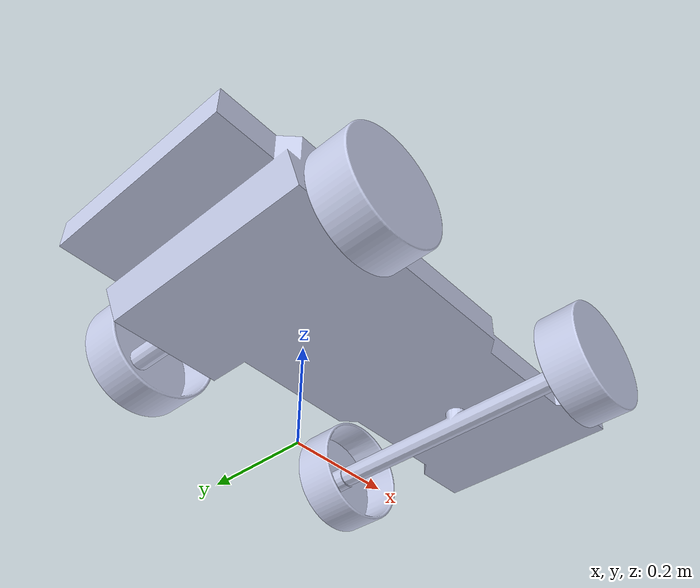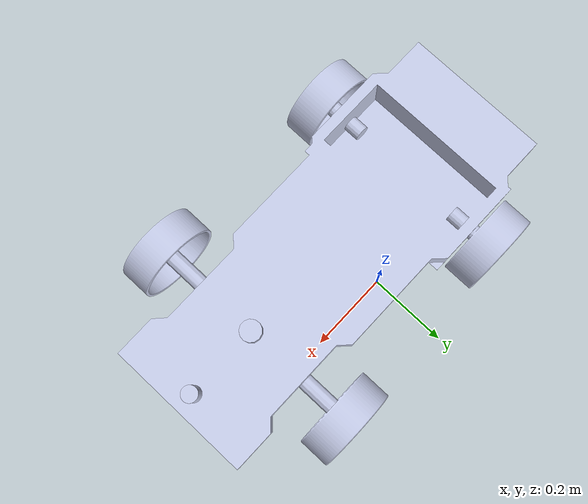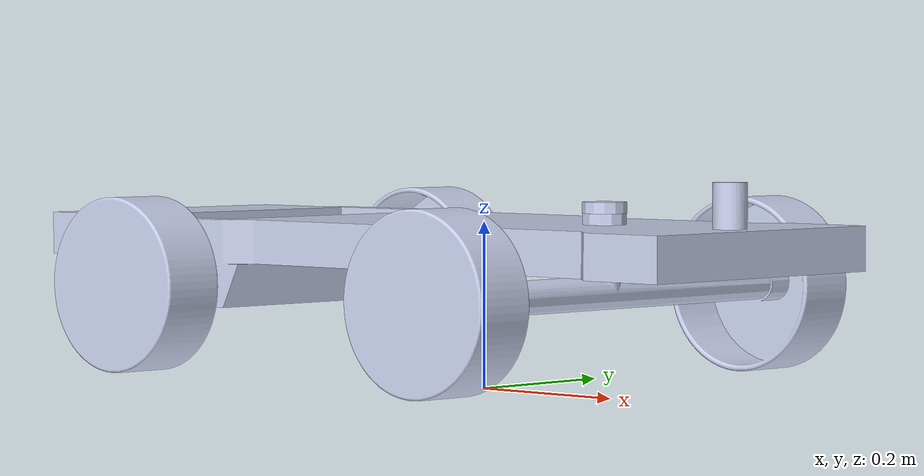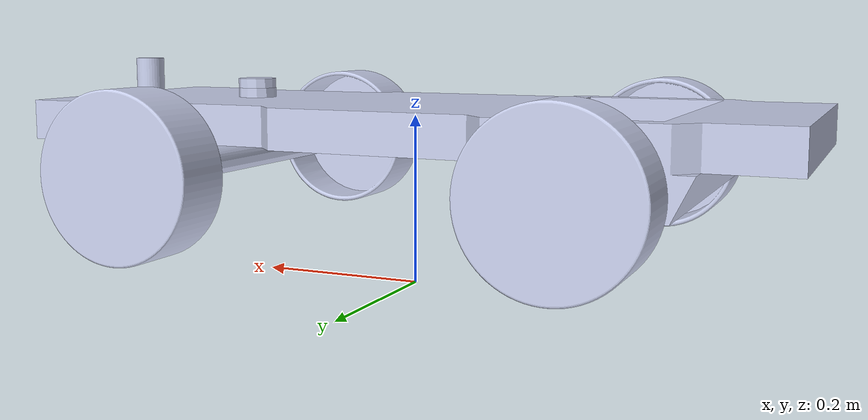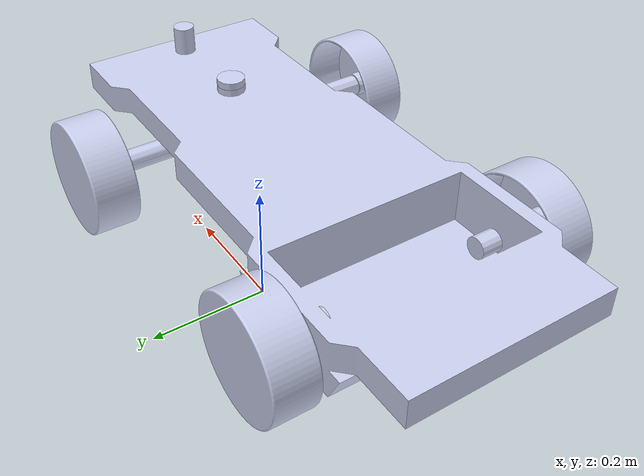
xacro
<?xml version="1.0" ?>
<robot
  name="carurdf" xmlns:xacro="http://ros.org/wiki/xacro">
  <link name="dummy_link"></link>

  <link
    name="base_link">
    <inertial>
      <origin
        xyz="0.0388679104606528 0.176434051441419 0.114032807298739"
        rpy="0 0 0" />
      <mass
        value="16.0540556274264" />
      <inertia
        ixx="0.197068566759581"
        ixy="-0.0253646829828786"
        ixz="2.70504123822733E-17"
        iyy="1.45833720643837"
        iyz="2.32689825682768E-18"
        izz="1.27769772259143" />
    </inertial>
    <visual>
      <origin
        xyz="0 0 0"
        rpy="0 0 0" />
      <geometry>
        <mesh
          filename="package://robot_model/meshes/base_link.STL" />
      </geometry>
      <material
        name="">
        <color
          rgba="0.792156862745098 0.819607843137255 0.933333333333333 1" />
      </material>
    </visual>
    <collision>
      <origin
        xyz="0 0 0"
        rpy="0 0 0" />
      <geometry>
        <mesh
          filename="package://robot_model/meshes/base_link.STL" />
      </geometry>
    </collision>
  </link>
  <joint name="dummy_joint" type="fixed">
    <origin rpy="0 0 0" xyz="0 0 0" />
    <parent link="dummy_link"/>
    <child link="base_link"/>
</joint>
  <link
    name="steering_link">
    <inertial>
      <origin
        xyz="1.08386723718379E-06 0.0275109995292219 -8.16767604591706E-07"
        rpy="0 0 0" />
      <mass
        value="0.803555096635306" />
      <inertia
        ixx="0.0220348562334033"
        ixy="4.573058693268E-10"
        ixz="-3.00061534487245E-10"
        iyy="0.0216053382992722"
        iyz="1.30513451422973E-09"
        izz="0.000579600615499103" />
    </inertial>
    <visual>
      <origin
        xyz="0 0 0"
        rpy="0 0 0" />
      <geometry>
        <mesh
          filename="package://robot_model/meshes/steering_link.STL" />
      </geometry>
      <material
        name="">
        <color
          rgba="0.792156862745098 0.819607843137255 0.933333333333333 1" />
      </material>
    </visual>
    <collision>
      <origin
        xyz="0 0 0"
        rpy="0 0 0" />
      <geometry>
        <mesh
          filename="package://robot_model/meshes/steering_link.STL" />
      </geometry>
    </collision>
  </link>
  <joint
    name="steering_joint"
    type="revolute">
    <origin
      xyz="0.29033 -0.11403 0.1127"
      rpy="1.5708 0 0.0033584" />
    <parent
      link="base_link" />
    <child
      link="steering_link" />
    <axis
      xyz="0 1 0" />
    <limit
      lower="-1.5"
      upper="1.5"
      effort="0"
      velocity="100" />
  </joint>
  <link
    name="front_wheel_left_link">
    <inertial>
      <origin
        xyz="-7.49400541621981E-16 -6.10622663543836E-16 -0.0523945427109786"
        rpy="0 0 0" />
      <mass
        value="0.487930626262268" />
      <inertia
        ixx="0.00212973503326723"
        ixy="-2.94584658729122E-19"
        ixz="1.77241644212962E-18"
        iyy="0.00212973503326723"
        iyz="9.52065032713834E-19"
        izz="0.00370155055277024" />
    </inertial>
    <visual>
      <origin
        xyz="0 0 0"
        rpy="0 0 0" />
      <geometry>
        <mesh
          filename="package://robot_model/meshes/front_wheel_left_link.STL" />
      </geometry>
      <material
        name="">
        <color
          rgba="0.792156862745098 0.819607843137255 0.933333333333333 1" />
      </material>
    </visual>
    <collision>
      <origin
        xyz="0 0 0"
        rpy="0 0 0" />
      <geometry>
        <mesh
          filename="package://robot_model/meshes/front_wheel_left_link.STL" />
      </geometry>
    </collision>
  </link>
  <joint
    name="front_wheel_left_joint"
    type="continuous">
    <origin
      xyz="0 0.019048 -0.23401"
      rpy="0 0 2.5819" />
    <parent
      link="steering_link" />
    <child
      link="front_wheel_left_link" />
    <axis
      xyz="0 0 1" />
  </joint>
  <link
    name="front_wheel_right_link">
    <inertial>
      <origin
        xyz="-1.94289029309402E-16 2.77555756156289E-17 -0.052345645800897"
        rpy="0 0 0" />
      <mass
        value="0.487930626262267" />
      <inertia
        ixx="0.00212973503326723"
        ixy="6.08308622471497E-20"
        ixz="1.47087271290709E-18"
        iyy="0.00212973503326723"
        iyz="1.11448360034985E-18"
        izz="0.00370155055277024" />
    </inertial>
    <visual>
      <origin
        xyz="0 0 0"
        rpy="0 0 0" />
      <geometry>
        <mesh
          filename="package://robot_model/meshes/front_wheel_right_link.STL" />
      </geometry>
      <material
        name="">
        <color
          rgba="0.792156862745098 0.819607843137255 0.933333333333333 1" />
      </material>
    </visual>
    <collision>
      <origin
        xyz="0 0 0"
        rpy="0 0 0" />
      <geometry>
        <mesh
          filename="package://robot_model/meshes/front_wheel_right_link.STL" />
      </geometry>
    </collision>
  </link>
  <joint
    name="front_wheel_right_joint"
    type="continuous">
    <origin
      xyz="0 0.019048 0.23406"
      rpy="-3.1416 0 -0.39291" />
    <parent
      link="steering_link" />
    <child
      link="front_wheel_right_link" />
    <axis
      xyz="0 0 1" />
  </joint>
  <link
    name="rear_wheel_right_link">
    <inertial>
      <origin
        xyz="-5.55111512312578E-17 0 -0.108396107945297"
        rpy="0 0 0" />
      <mass
        value="0.636905158654328" />
      <inertia
        ixx="0.00271570392014879"
        ixy="-6.50521303491303E-19"
        ixz="2.73467528080536E-19"
        iyy="0.0027157039201488"
        iyz="1.48690052999987E-19"
        izz="0.00372618247145096" />
    </inertial>
    <visual>
      <origin
        xyz="0 0 0"
        rpy="0 0 0" />
      <geometry>
        <mesh
          filename="package://robot_model/meshes/rear_wheel_right_link.STL" />
      </geometry>
      <material
        name="">
        <color
          rgba="0.792156862745098 0.819607843137255 0.933333333333333 1" />
      </material>
    </visual>
    <collision>
      <origin
        xyz="0 0 0"
        rpy="0 0 0" />
      <geometry>
        <mesh
          filename="package://robot_model/meshes/rear_wheel_right_link.STL" />
      </geometry>
    </collision>
  </link>
  <joint
    name="rear_wheel_right_joint"
    type="continuous">
    <origin
      xyz="-0.21767 -0.25373 0.13175"
      rpy="1.5708 0.57373 -3.1416" />
    <parent
      link="base_link" />
    <child
      link="rear_wheel_right_link" />
    <axis
      xyz="0 0 -1" />
  </joint>
  <link
    name="rear_wheel_left_link">
    <inertial>
      <origin
        xyz="0 0 -0.108396107945297"
        rpy="0 0 0" />
      <mass
        value="0.636905158654327" />
      <inertia
        ixx="0.00271570392014879"
        ixy="2.71050543121376E-19"
        ixz="4.8674306209885E-19"
        iyy="0.00271570392014879"
        iyz="2.44428926893499E-19"
        izz="0.00372618247145095" />
    </inertial>
    <visual>
      <origin
        xyz="0 0 0"
        rpy="0 0 0" />
      <geometry>
        <mesh
          filename="package://robot_model/meshes/rear_wheel_left_link.STL" />
      </geometry>
      <material
        name="">
        <color
          rgba="0.792156862745098 0.819607843137255 0.933333333333333 1" />
      </material>
    </visual>
    <collision>
      <origin
        xyz="0 0 0"
        rpy="0 0 0" />
      <geometry>
        <mesh
          filename="package://robot_model/meshes/rear_wheel_left_link.STL" />
      </geometry>
    </collision>
  </link>
  <joint
    name="rear_wheel_left_joint"
    type="continuous">
    <origin
      xyz="-0.21767 0.025667 0.13175"
      rpy="1.5708 0.16111 0" />
    <parent
      link="base_link" />
    <child
      link="rear_wheel_left_link" />
    <axis
      xyz="0 0 -1" />
  </joint>
  <link
    name="lidar_link">
    <inertial>
      <origin
        xyz="0 0.0254 1.38777878078145E-17"
        rpy="0 0 0" />
      <mass
        value="0.057916664860844" />
      <inertia
        ixx="1.77096974512897E-05"
        ixy="-5.41557501847207E-38"
        ixz="0"
        iyy="1.05090512348312E-05"
        iyz="-9.18354961579912E-38"
        izz="1.77096974512897E-05" />
    </inertial>
    <visual>
      <origin
        xyz="0 0 0"
        rpy="0 0 0" />
      <geometry>
        <mesh
          filename="package://robot_model/meshes/lidar_link.STL" />
      </geometry>
      <material
        name="">
        <color
          rgba="0.792156862745098 0.819607843137255 0.933333333333333 1" />
      </material>
    </visual>
    <collision>
      <origin
        xyz="0 0 0"
        rpy="0 0 0" />
      <geometry>
        <mesh
          filename="package://robot_model/meshes/lidar_link.STL" />
      </geometry>
    </collision>
  </link>
  <joint
    name="lidar_joint"
    type="fixed">
    <origin
      xyz="0.46989 -0.11327 0.20795"
      rpy="1.5708 0 0" />
    <parent
      link="base_link" />
    <child
      link="lidar_link" />
    <axis
      xyz="0 0 0" />
  </joint>
  <link name = "laser_frame">
  <visual>
      <geometry>
        <cylinder radius = "0.001" length = "0.001"/>
      </geometry>
      <material
        name="">
        <color
          rgba="0.792156862745098 0.819607843137255 0.933333333333333 1" />
      </material>
    </visual>
    <collision>
      <geometry>
        <cylinder radius = "0.001" length = "0.001"/>
        </geometry>
    </collision>
  </link>
  <joint
    name="laser_joint"
    type="fixed">
    <origin
      xyz="0 0.04 0"
      rpy="1.5708 0 0" />
    <parent
      link="lidar_link" />
    <child
      link="laser_frame" />
    <axis
      xyz="0 0 0" />
  </joint>

<ros2_control name="GazeboSystem" type="system">
 <hardware>
     <plugin>gazebo_ros2_control/GazeboSystem</plugin>
 </hardware>
 # Velocity Controllers

 <joint name="rear_wheel_right_joint">
     <command_interface name="velocity">
         <param name="min">-1000.0</param>
         <param name="max">1000.0</param>
     </command_interface>
     <state_interface name="position"/>
     <state_interface name="velocity"/>
 </joint>
 <joint name="rear_wheel_left_joint">
     <command_interface name="velocity">
         <param name="min">-1000.0</param>
         <param name="max">1000.0</param>
     </command_interface>
     <state_interface name="position"/>
     <state_interface name="velocity"/>
 </joint>

# Position Controller
  <joint name="steering_joint">
     <command_interface name="position">
         <param name="min">-3.14</param>
         <param name="max">3.14</param>
     </command_interface>
     <state_interface name="position"/>
     <state_interface name="velocity"/>
 </joint>

 </ros2_control>

<gazebo>
    <plugin filename="libgazebo_ros2_control.so" name="gazebo_ros2_control">
        <parameters>$(find carurdf)/config/control.yaml</parameters>
    </plugin>
</gazebo>

<gazebo reference="laser_frame">
  <sensor name="lidar" type="ray">
    <pose>0.0 0.0 0.0 0 0 0</pose>
    <always_on>true</always_on>
    <visualize>true</visualize>
    <update_rate>5</update_rate>
    <ray>
      <scan>
        <horizontal>
          <samples>360</samples>
          <resolution>1.00000</resolution>
          <min_angle>0.000000</min_angle>
          <max_angle>6.280000</max_angle>
        </horizontal>
      </scan>
      <range>
        <min>0.120000</min>
        <max>3.5</max>
        <resolution>0.015000</resolution>
      </range>
      <noise>
        <type>gaussian</type>
        <mean>0.0</mean>
        <stddev>0.01</stddev>
      </noise>
    </ray>
    <plugin name="scan" filename="libgazebo_ros_ray_sensor.so">
      <ros>
        <remapping>~/out:=scan</remapping>
      </ros>
      <output_type>sensor_msgs/LaserScan</output_type>
      <frame_name>laser_frame</frame_name>
    </plugin>
  </sensor>
  </gazebo>

<gazebo reference="base_link">
  <gravity>true</gravity>
  <sensor name="imu_sensor" type="imu">
    <always_on>true</always_on>
    <update_rate>100</update_rate>
    <visualize>true</visualize>
    <topic>__default_topic__</topic>
    <plugin filename="libgazebo_ros_imu_sensor.so" name="imu_plugin">
      <topicName>imu</topicName>
      <bodyName>base_link</bodyName>
      <updateRateHZ>10.0</updateRateHZ>
      <gaussianNoise>0.0</gaussianNoise>
      <xyzOffset>0 0 0</xyzOffset>
      <rpyOffset>0 0 0</rpyOffset>
      <frameName>base_link</frameName>
      <initialOrientationAsReference>false</initialOrientationAsReference>
    </plugin>
    <pose>0 0 0 0 0 0</pose>
  </sensor>
</gazebo>

</robot>
